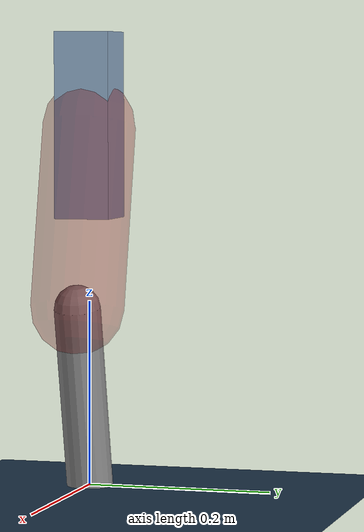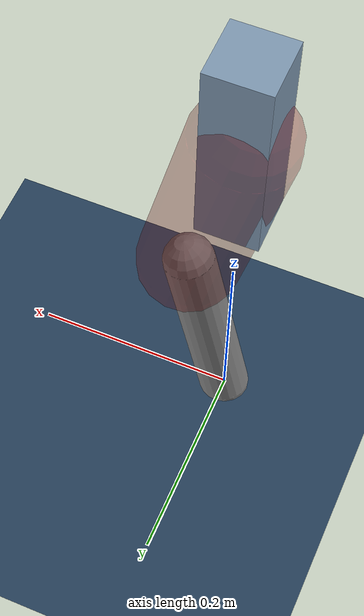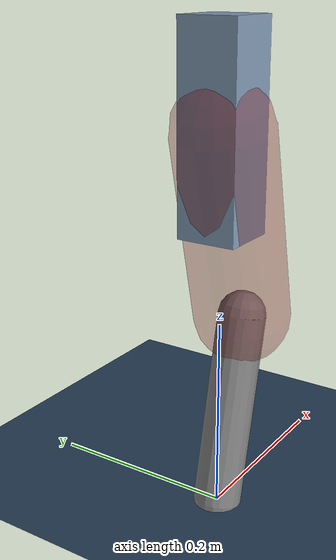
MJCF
<mujoco model="Hopper2D">
	<compiler inertiafromgeom="true" angle="radian" />
	<option timestep="0.001" integrator="implicit" cone="elliptic" solver="Newton" tolerance="1e-10" />

	<default>
		<geom contype="1" conaffinity="1" condim="3" friction="2 0.005 0.0001" solref="0.005 1" />
		<joint limited="true" damping="0.1" />
	</default>

	<asset>
		<texture name="skybox" type="skybox" builtin="gradient" rgb1=".4 .6 .8" rgb2="0 0 0" width="800" height="800" />
		<texture name="grid" type="2d" builtin="checker" rgb1=".1 .2 .3" rgb2=".2 .3 .4" width="300" height="300" mark="edge" markrgb=".2 .3 .4" />
		<material name="ground" texture="grid" texrepeat="1 1" texuniform="true" reflectance="0.1" />
		<material name="leg" rgba="0.5 0.6 0.7 1" />
	</asset>

	<worldbody>

		<geom name="floor" type="plane" size="5 5 0.25" material="ground" />

		<light directional="false" diffuse="0.8 0.8 0.8" specular="0.3 0.3 0.3" pos="0 0 2" dir="0 0 -1" />
		<light mode="targetbodycom" target="base" directional="false" diffuse="0.8 0.8 0.8" specular="0.3 0.3 0.3" pos="0 0 2" dir="0 0 -1" />

		<camera name="fixed" pos="0 -2 1" xyaxes="1 0 0 0 0 1" />
		<camera name="tracking" mode="trackcom" pos="0 -3 1" />

		<body name="root" pos="0 0 0.3905531607593938">
			<joint name="slide_x" type="slide" axis="1 0 0" range="-100 100" />
			<joint name="slide_z" type="slide" axis="0 0 1" range="0 10" />

			<body name="base" pos="0 0 0">
				<geom name="torso" type="box" size="0.03 0.03 0.1" mass="2.928" material="leg" />

				<body name="link1" pos="0 0 0" euler="0 1.345577511974109 0">
					<joint type="hinge" axis="0 -1 0" pos="0 0 0" name="hinge1" limited="true" range="-3.14 3.14" stiffness="0" damping="0.1" />
					<geom name="thigh" type="capsule" fromto="0 0 0 0.19913751929909712 0 0" size="0.05" rgba="0.5 0 0 0.3" mass="0.727530046317833" />

					<body name="link2" pos="0.19913751929909712 0 0" euler="0 0.44784708394517797 0">
						<joint type="hinge" axis="0 -1 0" pos="0 0 0" name="hinge2" limited="true" range="-3.14 3.14" stiffness="0" damping="0.1" />
						<geom name="shank" type="capsule" fromto="0 0 0 0.20141564146029667 0 0" size="0.025" mass="0.402074077314267" />

					</body>
				</body>
			</body>
		</body>
	</worldbody>

	<actuator>
		<motor name="torque1" joint="hinge1" ctrlrange="-162.75662005422203 162.75662005422203" ctrllimited="true" gear="1" />
		<motor name="torque2" joint="hinge2" ctrlrange="-49.19707109018913 49.19707109018913" ctrllimited="true" gear="1" />
	</actuator>
</mujoco>
